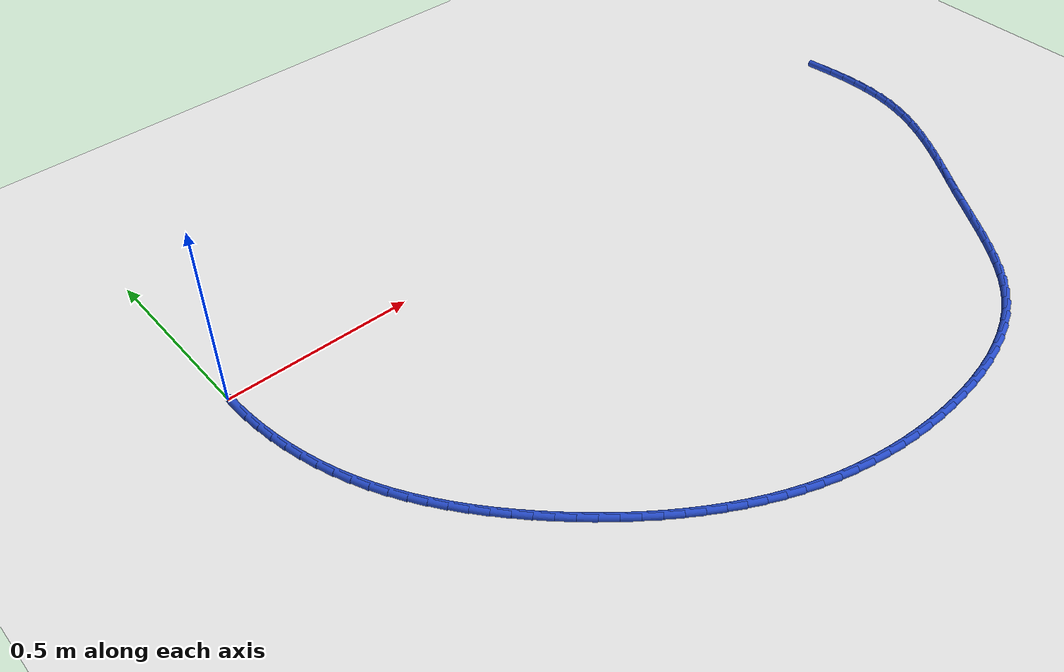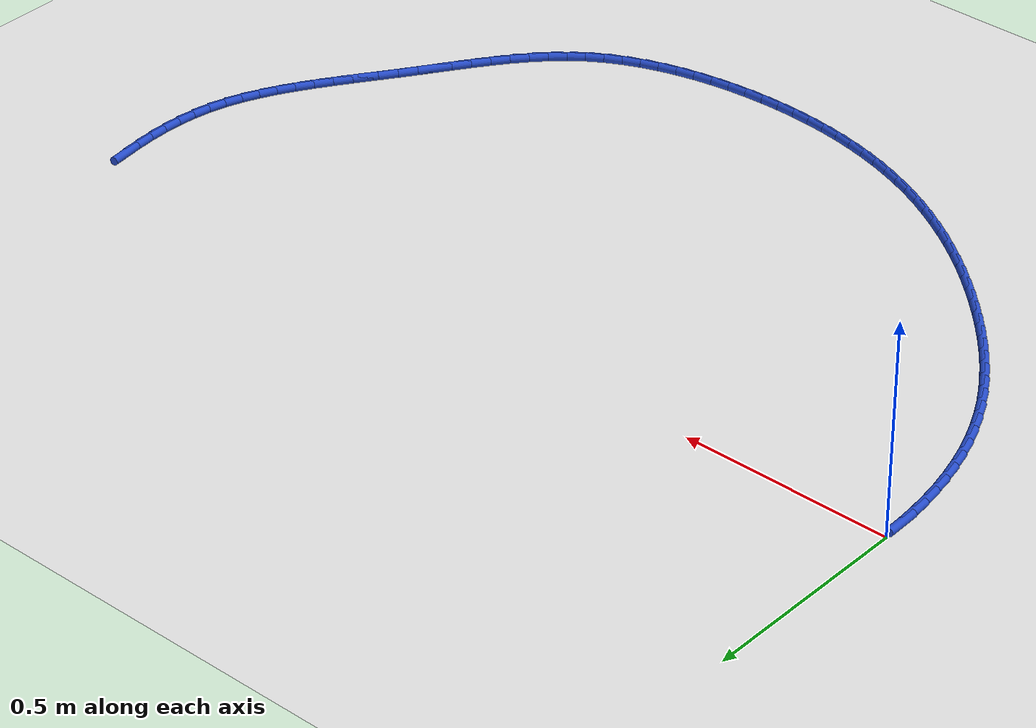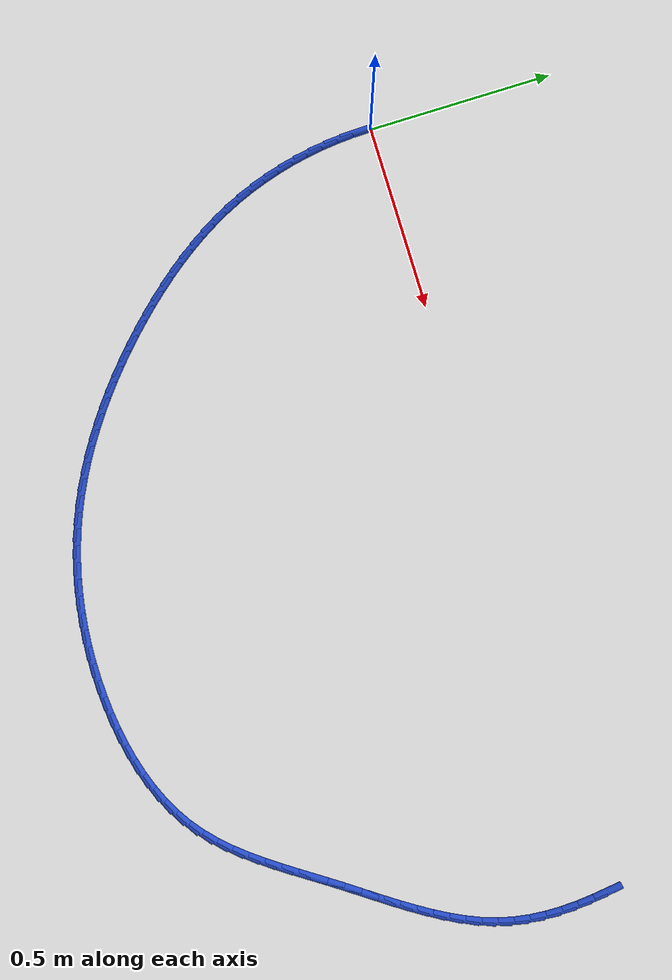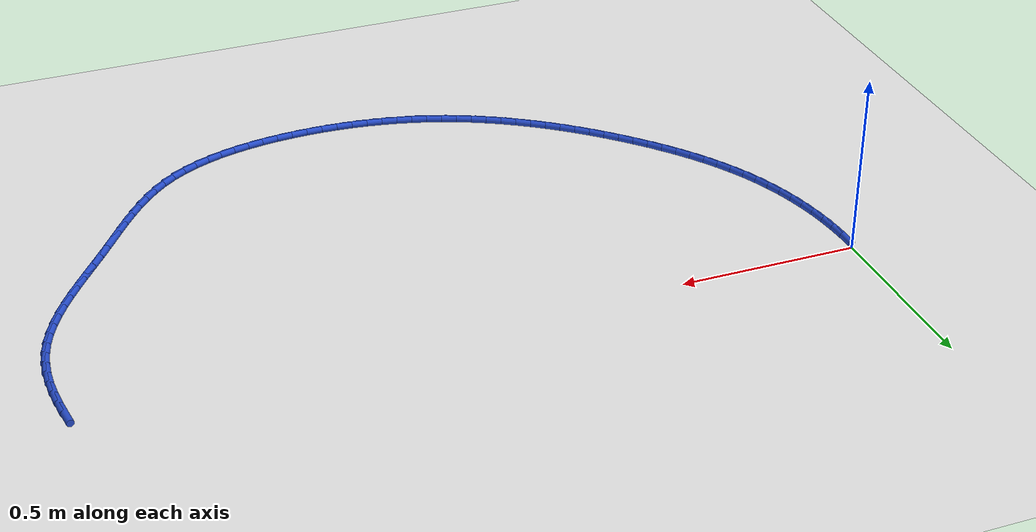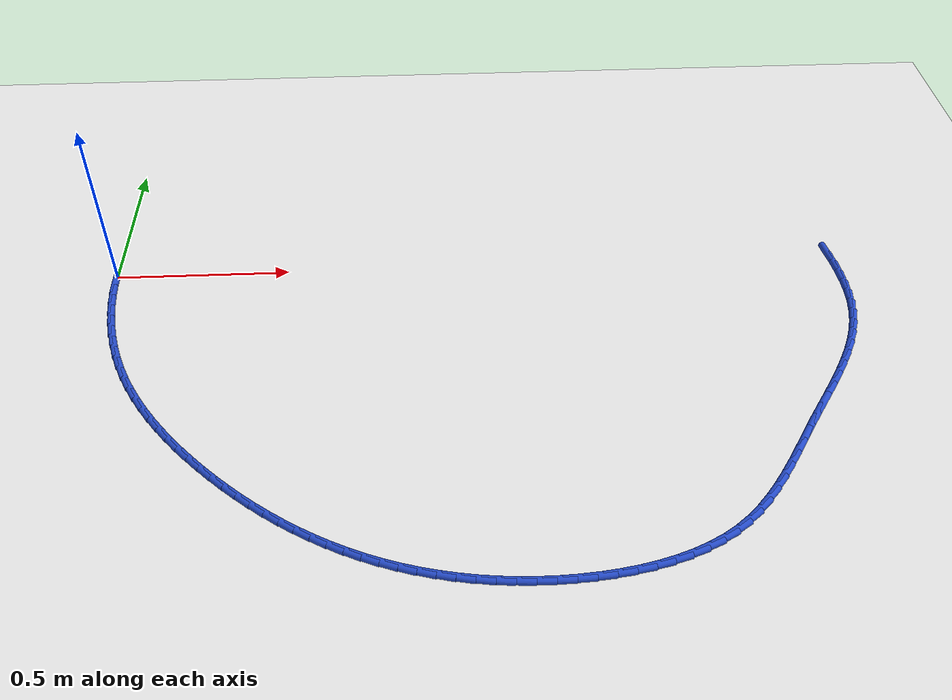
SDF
<sdf version="1.6">
 <world name="default">
  <model name="ground_plane">
   <static>1</static>
   <link name="link">
    <collision name="collision">
     <geometry><plane><normal>0 0 1</normal><size>100 100</size></plane></geometry>
     <surface><friction><ode><mu>100</mu><mu2>50</mu2></ode></friction></surface>
    </collision>
    <visual name="visual">
     <cast_shadows>0</cast_shadows>
     <geometry><plane><normal>0 0 1</normal><size>100 100</size></plane></geometry>
     <material>
      <script><uri>file://media/materials/scripts/gazebo.material</uri><name>Gazebo/WhiteGlow</name></script>
     </material>
    </visual>
   </link>
  </model>
  <model name="line">
   <link name="link_74">
    <pose>2.1113435386234594 -4.940039006224098e-05 0.01 0 1.57 -1.441654745440006</pose>
    <collision name="collision">
     <geometry><cylinder><radius>0.01</radius><length>0.08</length></cylinder></geometry>
    </collision>
    <visual name="visual">
     <material>
      <script><name>Gazebo/Blue</name><uri>file://media/materials/scripts/gazebo.material</uri></script>
     </material>
     <geometry><cylinder><radius>0.01</radius><length>0.08</length></cylinder></geometry>
    </visual>
   </link>
   <link name="link_75">
    <pose>2.117135748800451 -0.044651412414624905 0.01 0 1.57 -1.483321731270571</pose>
    <collision name="collision">
     <geometry><cylinder><radius>0.01</radius><length>0.08</length></cylinder></geometry>
    </collision>
    <visual name="visual">
     <material>
      <script><name>Gazebo/Blue</name><uri>file://media/materials/scripts/gazebo.material</uri></script>
     </material>
     <geometry><cylinder><radius>0.01</radius><length>0.08</length></cylinder></geometry>
    </visual>
   </link>
   <link name="link_76">
    <pose>2.1210060083816904 -0.08878288885551706 0.01 0 1.57 -1.5331348587512796</pose>
    <collision name="collision">
     <geometry><cylinder><radius>0.01</radius><length>0.08</length></cylinder></geometry>
    </collision>
    <visual name="visual">
     <material>
      <script><name>Gazebo/Blue</name><uri>file://media/materials/scripts/gazebo.material</uri></script>
     </material>
     <geometry><cylinder><radius>0.01</radius><length>0.08</length></cylinder></geometry>
    </visual>
   </link>
   <link name="link_77">
    <pose>2.122649231355051 -0.1323936687044467 0.01 0 1.57 1.5501463523527739</pose>
    <collision name="collision">
     <geometry><cylinder><radius>0.01</radius><length>0.08</length></cylinder></geometry>
    </collision>
    <visual name="visual">
     <material>
      <script><name>Gazebo/Blue</name><uri>file://media/materials/scripts/gazebo.material</uri></script>
     </material>
     <geometry><cylinder><radius>0.01</radius><length>0.08</length></cylinder></geometry>
    </visual>
   </link>
   <link name="link_78">
    <pose>2.1217603317084093 -0.1754335909531214 0.01 0 1.57 1.483180463637573</pose>
    <collision name="collision">
     <geometry><cylinder><radius>0.01</radius><length>0.08</length></cylinder></geometry>
    </collision>
    <visual name="visual">
     <material>
      <script><name>Gazebo/Blue</name><uri>file://media/materials/scripts/gazebo.material</uri></script>
     </material>
     <geometry><cylinder><radius>0.01</radius><length>0.08</length></cylinder></geometry>
    </visual>
   </link>
   <link name="link_79">
    <pose>2.1180342234296385 -0.21785249459325084 0.01 0 1.57 1.4077354511814084</pose>
    <collision name="collision">
     <geometry><cylinder><radius>0.01</radius><length>0.08</length></cylinder></geometry>
    </collision>
    <visual name="visual">
     <material>
      <script><name>Gazebo/Blue</name><uri>file://media/materials/scripts/gazebo.material</uri></script>
     </material>
     <geometry><cylinder><radius>0.01</radius><length>0.08</length></cylinder></geometry>
    </visual>
   </link>
   <link name="link_80">
    <pose>2.1111658205066135 -0.2596002186165419 0.01 0 1.57 1.3245697374175465</pose>
    <collision name="collision">
     <geometry><cylinder><radius>0.01</radius><length>0.08</length></cylinder></geometry>
    </collision>
    <visual name="visual">
     <material>
      <script><name>Gazebo/Blue</name><uri>file://media/materials/scripts/gazebo.material</uri></script>
     </material>
     <geometry><cylinder><radius>0.01</radius><length>0.08</length></cylinder></geometry>
    </visual>
   </link>
   <link name="link_81">
    <pose>2.1008545687960254 -0.3006275612726654 0.01 0 1.57 1.2413383697773763</pose>
    <collision name="collision">
     <geometry><cylinder><radius>0.01</radius><length>0.08</length></cylinder></geometry>
    </collision>
    <visual name="visual">
     <material>
      <script><name>Gazebo/Blue</name><uri>file://media/materials/scripts/gazebo.material</uri></script>
     </material>
     <geometry><cylinder><radius>0.01</radius><length>0.08</length></cylinder></geometry>
    </visual>
   </link>
   <link name="link_82">
    <pose>2.087070107203448 -0.34094251241229756 0.01 0 1.57 1.168965172644767</pose>
    <collision name="collision">
     <geometry><cylinder><radius>0.01</radius><length>0.08</length></cylinder></geometry>
    </collision>
    <visual name="visual">
     <material>
      <script><name>Gazebo/Blue</name><uri>file://media/materials/scripts/gazebo.material</uri></script>
     </material>
     <geometry><cylinder><radius>0.01</radius><length>0.08</length></cylinder></geometry>
    </visual>
   </link>
   <link name="link_83">
    <pose>2.070199888368588 -0.3806415002692515 0.01 0 1.57 1.1083911365597328</pose>
    <collision name="collision">
     <geometry><cylinder><radius>0.01</radius><length>0.08</length></cylinder></geometry>
    </collision>
    <visual name="visual">
     <material>
      <script><name>Gazebo/Blue</name><uri>file://media/materials/scripts/gazebo.material</uri></script>
     </material>
     <geometry><cylinder><radius>0.01</radius><length>0.08</length></cylinder></geometry>
    </visual>
   </link>
   <link name="link_84">
    <pose>2.0506671909624328 -0.41982853635195 0.01 0 1.57 1.0592171250427465</pose>
    <collision name="collision">
     <geometry><cylinder><radius>0.01</radius><length>0.08</length></cylinder></geometry>
    </collision>
    <visual name="visual">
     <material>
      <script><name>Gazebo/Blue</name><uri>file://media/materials/scripts/gazebo.material</uri></script>
     </material>
     <geometry><cylinder><radius>0.01</radius><length>0.08</length></cylinder></geometry>
    </visual>
   </link>
   <link name="link_85">
    <pose>2.0288952936559723 -0.4586076321688136 0.01 0 1.57 1.0208247940489334</pose>
    <collision name="collision">
     <geometry><cylinder><radius>0.01</radius><length>0.08</length></cylinder></geometry>
    </collision>
    <visual name="visual">
     <material>
      <script><name>Gazebo/Blue</name><uri>file://media/materials/scripts/gazebo.material</uri></script>
     </material>
     <geometry><cylinder><radius>0.01</radius><length>0.08</length></cylinder></geometry>
    </visual>
   </link>
   <link name="link_86">
    <pose>2.0053074751201936 -0.4970827992282649 0.01 0 1.57 0.9925582580937964</pose>
    <collision name="collision">
     <geometry><cylinder><radius>0.01</radius><length>0.08</length></cylinder></geometry>
    </collision>
    <visual name="visual">
     <material>
      <script><name>Gazebo/Blue</name><uri>file://media/materials/scripts/gazebo.material</uri></script>
     </material>
     <geometry><cylinder><radius>0.01</radius><length>0.08</length></cylinder></geometry>
    </visual>
   </link>
   <link name="link_87">
    <pose>1.9803270140260865 -0.5353580490387251 0.01 0 1.57 0.9738369358224979</pose>
    <collision name="collision">
     <geometry><cylinder><radius>0.01</radius><length>0.08</length></cylinder></geometry>
    </collision>
    <visual name="visual">
     <material>
      <script><name>Gazebo/Blue</name><uri>file://media/materials/scripts/gazebo.material</uri></script>
     </material>
     <geometry><cylinder><radius>0.01</radius><length>0.08</length></cylinder></geometry>
    </visual>
   </link>
   <link name="link_88">
    <pose>1.9543771890446393 -0.573537393108615 0.01 0 1.57 0.9642178031817733</pose>
    <collision name="collision">
     <geometry><cylinder><radius>0.01</radius><length>0.08</length></cylinder></geometry>
    </collision>
    <visual name="visual">
     <material>
      <script><name>Gazebo/Blue</name><uri>file://media/materials/scripts/gazebo.material</uri></script>
     </material>
     <geometry><cylinder><radius>0.01</radius><length>0.08</length></cylinder></geometry>
    </visual>
   </link>
   <link name="link_89">
    <pose>1.92788127884684 -0.6117248429463574 0.01 0 1.57 0.9634248427808662</pose>
    <collision name="collision">
     <geometry><cylinder><radius>0.01</radius><length>0.08</length></cylinder></geometry>
    </collision>
    <visual name="visual">
     <material>
      <script><name>Gazebo/Blue</name><uri>file://media/materials/scripts/gazebo.material</uri></script>
     </material>
     <geometry><cylinder><radius>0.01</radius><length>0.08</length></cylinder></geometry>
    </visual>
   </link>
   <link name="link_90">
    <pose>1.9012625621036778 -0.6500244100603734 0.01 0 1.57 0.9713073079931377</pose>
    <collision name="collision">
     <geometry><cylinder><radius>0.01</radius><length>0.08</length></cylinder></geometry>
    </collision>
    <visual name="visual">
     <material>
      <script><name>Gazebo/Blue</name><uri>file://media/materials/scripts/gazebo.material</uri></script>
     </material>
     <geometry><cylinder><radius>0.01</radius><length>0.08</length></cylinder></geometry>
    </visual>
   </link>
   <link name="link_91">
    <pose>1.8749422973057186 -0.6885388500080164 0.01 0 1.57 0.9817716032266591</pose>
    <collision name="collision">
     <geometry><cylinder><radius>0.01</radius><length>0.08</length></cylinder></geometry>
    </collision>
    <visual name="visual">
     <material>
      <script><name>Gazebo/Blue</name><uri>file://media/materials/scripts/gazebo.material</uri></script>
     </material>
     <geometry><cylinder><radius>0.01</radius><length>0.08</length></cylinder></geometry>
    </visual>
   </link>
   <link name="link_92">
    <pose>1.8490980909558532 -0.7272194393151213 0.01 0 1.57 0.9829027595713841</pose>
    <collision name="collision">
     <geometry><cylinder><radius>0.01</radius><length>0.08</length></cylinder></geometry>
    </collision>
    <visual name="visual">
     <material>
      <script><name>Gazebo/Blue</name><uri>file://media/materials/scripts/gazebo.material</uri></script>
     </material>
     <geometry><cylinder><radius>0.01</radius><length>0.08</length></cylinder></geometry>
    </visual>
   </link>
   <link name="link_93">
    <pose>1.8234347653757477 -0.7657235234356904 0.01 0 1.57 0.9731680264339136</pose>
    <collision name="collision">
     <geometry><cylinder><radius>0.01</radius><length>0.08</length></cylinder></geometry>
    </collision>
    <visual name="visual">
     <material>
      <script><name>Gazebo/Blue</name><uri>file://media/materials/scripts/gazebo.material</uri></script>
     </material>
     <geometry><cylinder><radius>0.01</radius><length>0.08</length></cylinder></geometry>
    </visual>
   </link>
   <link name="link_94">
    <pose>1.7976028821614398 -0.8036747137990409 0.01 0 1.57 0.9522362246229236</pose>
    <collision name="collision">
     <geometry><cylinder><radius>0.01</radius><length>0.08</length></cylinder></geometry>
    </collision>
    <visual name="visual">
     <material>
      <script><name>Gazebo/Blue</name><uri>file://media/materials/scripts/gazebo.material</uri></script>
     </material>
     <geometry><cylinder><radius>0.01</radius><length>0.08</length></cylinder></geometry>
    </visual>
   </link>
   <link name="link_95">
    <pose>1.7712530029089713 -0.8406966218344885 0.01 0 1.57 0.9196320542576092</pose>
    <collision name="collision">
     <geometry><cylinder><radius>0.01</radius><length>0.08</length></cylinder></geometry>
    </collision>
    <visual name="visual">
     <material>
      <script><name>Gazebo/Blue</name><uri>file://media/materials/scripts/gazebo.material</uri></script>
     </material>
     <geometry><cylinder><radius>0.01</radius><length>0.08</length></cylinder></geometry>
    </visual>
   </link>
   <link name="link_96">
    <pose>1.7440356892143816 -0.8764128589713487 0.01 0 1.57 0.8748044109689256</pose>
    <collision name="collision">
     <geometry><cylinder><radius>0.01</radius><length>0.08</length></cylinder></geometry>
    </collision>
    <visual name="visual">
     <material>
      <script><name>Gazebo/Blue</name><uri>file://media/materials/scripts/gazebo.material</uri></script>
     </material>
     <geometry><cylinder><radius>0.01</radius><length>0.08</length></cylinder></geometry>
    </visual>
   </link>
   <link name="link_97">
    <pose>1.7156015026737086 -0.9104470366389383 0.01 0 1.57 0.8172581772664129</pose>
    <collision name="collision">
     <geometry><cylinder><radius>0.01</radius><length>0.08</length></cylinder></geometry>
    </collision>
    <visual name="visual">
     <material>
      <script><name>Gazebo/Blue</name><uri>file://media/materials/scripts/gazebo.material</uri></script>
     </material>
     <geometry><cylinder><radius>0.01</radius><length>0.08</length></cylinder></geometry>
    </visual>
   </link>
   <link name="link_98">
    <pose>1.685601004882994 -0.9424227662665728 0.01 0 1.57 0.7467668075097762</pose>
    <collision name="collision">
     <geometry><cylinder><radius>0.01</radius><length>0.08</length></cylinder></geometry>
    </collision>
    <visual name="visual">
     <material>
      <script><name>Gazebo/Blue</name><uri>file://media/materials/scripts/gazebo.material</uri></script>
     </material>
     <geometry><cylinder><radius>0.01</radius><length>0.08</length></cylinder></geometry>
    </visual>
   </link>
   <link name="link_99">
    <pose>1.6536847574382754 -0.971963659283569 0.01 0 1.57 0.6636682333886756</pose>
    <collision name="collision">
     <geometry><cylinder><radius>0.01</radius><length>0.08</length></cylinder></geometry>
    </collision>
    <visual name="visual">
     <material>
      <script><name>Gazebo/Blue</name><uri>file://media/materials/scripts/gazebo.material</uri></script>
     </material>
     <geometry><cylinder><radius>0.01</radius><length>0.08</length></cylinder></geometry>
    </visual>
   </link>
   <link name="link_100">
    <pose>1.6195034464417957 -0.998693426487204 0.01 0 1.57 0.573223925472038</pose>
    <collision name="collision">
     <geometry><cylinder><radius>0.01</radius><length>0.08</length></cylinder></geometry>
    </collision>
    <visual name="visual">
     <material>
      <script><name>Gazebo/Blue</name><uri>file://media/materials/scripts/gazebo.material</uri></script>
     </material>
     <geometry><cylinder><radius>0.01</radius><length>0.08</length></cylinder></geometry>
    </visual>
   </link>
   <link name="link_101">
    <pose>1.5828533896978618 -1.0223520068234142 0.01 0 1.57 0.48842621864833813</pose>
    <collision name="collision">
     <geometry><cylinder><radius>0.01</radius><length>0.08</length></cylinder></geometry>
    </collision>
    <visual name="visual">
     <material>
      <script><name>Gazebo/Blue</name><uri>file://media/materials/scripts/gazebo.material</uri></script>
     </material>
     <geometry><cylinder><radius>0.01</radius><length>0.08</length></cylinder></geometry>
    </visual>
   </link>
   <link name="link_102">
    <pose>1.5439576857493478 -1.0430199514429266 0.01 0 1.57 0.4114280754309346</pose>
    <collision name="collision">
     <geometry><cylinder><radius>0.01</radius><length>0.08</length></cylinder></geometry>
    </collision>
    <visual name="visual">
     <material>
      <script><name>Gazebo/Blue</name><uri>file://media/materials/scripts/gazebo.material</uri></script>
     </material>
     <geometry><cylinder><radius>0.01</radius><length>0.08</length></cylinder></geometry>
    </visual>
   </link>
   <link name="link_103">
    <pose>1.5031172064269014 -1.0608398820836036 0.01 0 1.57 0.34180312833839616</pose>
    <collision name="collision">
     <geometry><cylinder><radius>0.01</radius><length>0.08</length></cylinder></geometry>
    </collision>
    <visual name="visual">
     <material>
      <script><name>Gazebo/Blue</name><uri>file://media/materials/scripts/gazebo.material</uri></script>
     </material>
     <geometry><cylinder><radius>0.01</radius><length>0.08</length></cylinder></geometry>
    </visual>
   </link>
   <link name="link_104">
    <pose>1.4606328235611703 -1.0759544204833065 0.01 0 1.57 0.2789249947846538</pose>
    <collision name="collision">
     <geometry><cylinder><radius>0.01</radius><length>0.08</length></cylinder></geometry>
    </collision>
    <visual name="visual">
     <material>
      <script><name>Gazebo/Blue</name><uri>file://media/materials/scripts/gazebo.material</uri></script>
     </material>
     <geometry><cylinder><radius>0.01</radius><length>0.08</length></cylinder></geometry>
    </visual>
   </link>
   <link name="link_105">
    <pose>1.4168054089828002 -1.0885061883798983 0.01 0 1.57 0.22207723109834193</pose>
    <collision name="collision">
     <geometry><cylinder><radius>0.01</radius><length>0.08</length></cylinder></geometry>
    </collision>
    <visual name="visual">
     <material>
      <script><name>Gazebo/Blue</name><uri>file://media/materials/scripts/gazebo.material</uri></script>
     </material>
     <geometry><cylinder><radius>0.01</radius><length>0.08</length></cylinder></geometry>
    </visual>
   </link>
   <link name="link_106">
    <pose>1.37193583452244 -1.0986378075112422 0.01 0 1.57 0.17052548710952986</pose>
    <collision name="collision">
     <geometry><cylinder><radius>0.01</radius><length>0.08</length></cylinder></geometry>
    </collision>
    <visual name="visual">
     <material>
      <script><name>Gazebo/Blue</name><uri>file://media/materials/scripts/gazebo.material</uri></script>
     </material>
     <geometry><cylinder><radius>0.01</radius><length>0.08</length></cylinder></geometry>
    </visual>
   </link>
   <link name="link_107">
    <pose>1.3263249720107353 -1.1064918996151998 0.01 0 1.57 0.12355905565295269</pose>
    <collision name="collision">
     <geometry><cylinder><radius>0.01</radius><length>0.08</length></cylinder></geometry>
    </collision>
    <visual name="visual">
     <material>
      <script><name>Gazebo/Blue</name><uri>file://media/materials/scripts/gazebo.material</uri></script>
     </material>
     <geometry><cylinder><radius>0.01</radius><length>0.08</length></cylinder></geometry>
    </visual>
   </link>
   <link name="link_108">
    <pose>1.280273693278333 -1.1122110864296335 0.01 0 1.57 0.08051052142703463</pose>
    <collision name="collision">
     <geometry><cylinder><radius>0.01</radius><length>0.08</length></cylinder></geometry>
    </collision>
    <visual name="visual">
     <material>
      <script><name>Gazebo/Blue</name><uri>file://media/materials/scripts/gazebo.material</uri></script>
     </material>
     <geometry><cylinder><radius>0.01</radius><length>0.08</length></cylinder></geometry>
    </visual>
   </link>
   <link name="link_109">
    <pose>1.2340828701558821 -1.1159379896924064 0.01 0 1.57 0.040430079752524835</pose>
    <collision name="collision">
     <geometry><cylinder><radius>0.01</radius><length>0.08</length></cylinder></geometry>
    </collision>
    <visual name="visual">
     <material>
      <script><name>Gazebo/Blue</name><uri>file://media/materials/scripts/gazebo.material</uri></script>
     </material>
     <geometry><cylinder><radius>0.01</radius><length>0.08</length></cylinder></geometry>
    </visual>
   </link>
   <link name="link_110">
    <pose>1.188028210400135 -1.1178009984559432 0.01 0 1.57 0.0007766001609319191</pose>
    <collision name="collision">
     <geometry><cylinder><radius>0.01</radius><length>0.08</length></cylinder></geometry>
    </collision>
    <visual name="visual">
     <material>
      <script><name>Gazebo/Blue</name><uri>file://media/materials/scripts/gazebo.material</uri></script>
     </material>
     <geometry><cylinder><radius>0.01</radius><length>0.08</length></cylinder></geometry>
    </visual>
   </link>
   <link name="link_111">
    <pose>1.1422228835313153 -1.1178365708873124 0.01 0 1.57 -0.03935652432028098</pose>
    <collision name="collision">
     <geometry><cylinder><radius>0.01</radius><length>0.08</length></cylinder></geometry>
    </collision>
    <visual name="visual">
     <material>
      <script><name>Gazebo/Blue</name><uri>file://media/materials/scripts/gazebo.material</uri></script>
     </material>
     <geometry><cylinder><radius>0.01</radius><length>0.08</length></cylinder></geometry>
    </visual>
   </link>
   <link name="link_112">
    <pose>1.0967154663787884 -1.1160446318221968 0.01 0 1.57 -0.07997808200745236</pose>
    <collision name="collision">
     <geometry><cylinder><radius>0.01</radius><length>0.08</length></cylinder></geometry>
    </collision>
    <visual name="visual">
     <material>
      <script><name>Gazebo/Blue</name><uri>file://media/materials/scripts/gazebo.material</uri></script>
     </material>
     <geometry><cylinder><radius>0.01</radius><length>0.08</length></cylinder></geometry>
    </visual>
   </link>
   <link name="link_113">
    <pose>1.0515543714423297 -1.1124250131522138 0.01 0 1.57 -0.12109125525243128</pose>
    <collision name="collision">
     <geometry><cylinder><radius>0.01</radius><length>0.08</length></cylinder></geometry>
    </collision>
    <visual name="visual">
     <material>
      <script><name>Gazebo/Blue</name><uri>file://media/materials/scripts/gazebo.material</uri></script>
     </material>
     <geometry><cylinder><radius>0.01</radius><length>0.08</length></cylinder></geometry>
    </visual>
   </link>
   <link name="link_114">
    <pose>1.0067880112217171 -1.1069775467689802 0.01 0 1.57 -0.16269522859568447</pose>
    <collision name="collision">
     <geometry><cylinder><radius>0.01</radius><length>0.08</length></cylinder></geometry>
    </collision>
    <visual name="visual">
     <material>
      <script><name>Gazebo/Blue</name><uri>file://media/materials/scripts/gazebo.material</uri></script>
     </material>
     <geometry><cylinder><radius>0.01</radius><length>0.08</length></cylinder></geometry>
    </visual>
   </link>
   <link name="link_115">
    <pose>0.962464798216727 -1.099702064564114 0.01 0 1.57 -0.20478464426223858</pose>
    <collision name="collision">
     <geometry><cylinder><radius>0.01</radius><length>0.08</length></cylinder></geometry>
    </collision>
    <visual name="visual">
     <material>
      <script><name>Gazebo/Blue</name><uri>file://media/materials/scripts/gazebo.material</uri></script>
     </material>
     <geometry><cylinder><radius>0.01</radius><length>0.08</length></cylinder></geometry>
    </visual>
   </link>
   <link name="link_116">
    <pose>0.918633144927137 -1.0905983984292325 0.01 0 1.57 -0.2473490801949317</pose>
    <collision name="collision">
     <geometry><cylinder><radius>0.01</radius><length>0.08</length></cylinder></geometry>
    </collision>
    <visual name="visual">
     <material>
      <script><name>Gazebo/Blue</name><uri>file://media/materials/scripts/gazebo.material</uri></script>
     </material>
     <geometry><cylinder><radius>0.01</radius><length>0.08</length></cylinder></geometry>
    </visual>
   </link>
   <link name="link_117">
    <pose>0.8753414638527249 -1.0796663802559527 0.01 0 1.57 -0.2903725695183887</pose>
    <collision name="collision">
     <geometry><cylinder><radius>0.01</radius><length>0.08</length></cylinder></geometry>
    </collision>
    <visual name="visual">
     <material>
      <script><name>Gazebo/Blue</name><uri>file://media/materials/scripts/gazebo.material</uri></script>
     </material>
     <geometry><cylinder><radius>0.01</radius><length>0.08</length></cylinder></geometry>
    </visual>
   </link>
   <link name="link_118">
    <pose>0.8326381674932661 -1.0669058419358919 0.01 0 1.57 -0.33383318251225075</pose>
    <collision name="collision">
     <geometry><cylinder><radius>0.01</radius><length>0.08</length></cylinder></geometry>
    </collision>
    <visual name="visual">
     <material>
      <script><name>Gazebo/Blue</name><uri>file://media/materials/scripts/gazebo.material</uri></script>
     </material>
     <geometry><cylinder><radius>0.01</radius><length>0.08</length></cylinder></geometry>
    </visual>
   </link>
   <link name="link_119">
    <pose>0.7905716683485398 -1.0523166153606682 0.01 0 1.57 -0.37767677805625227</pose>
    <collision name="collision">
     <geometry><cylinder><radius>0.01</radius><length>0.08</length></cylinder></geometry>
    </collision>
    <visual name="visual">
     <material>
      <script><name>Gazebo/Blue</name><uri>file://media/materials/scripts/gazebo.material</uri></script>
     </material>
     <geometry><cylinder><radius>0.01</radius><length>0.08</length></cylinder></geometry>
    </visual>
   </link>
   <link name="link_120">
    <pose>0.7491899281795313 -1.0358995948224166 0.01 0 1.57 -0.4209651252816041</pose>
    <collision name="collision">
     <geometry><cylinder><radius>0.01</radius><length>0.08</length></cylinder></geometry>
    </collision>
    <visual name="visual">
     <material>
      <script><name>Gazebo/Blue</name><uri>file://media/materials/scripts/gazebo.material</uri></script>
     </material>
     <geometry><cylinder><radius>0.01</radius><length>0.08</length></cylinder></geometry>
    </visual>
   </link>
   <link name="link_121">
    <pose>0.708525182361848 -1.0176927420243 0.01 0 1.57 -0.46255333793030956</pose>
    <collision name="collision">
     <geometry><cylinder><radius>0.01</radius><length>0.08</length></cylinder></geometry>
    </collision>
    <visual name="visual">
     <material>
      <script><name>Gazebo/Blue</name><uri>file://media/materials/scripts/gazebo.material</uri></script>
     </material>
     <geometry><cylinder><radius>0.01</radius><length>0.08</length></cylinder></geometry>
    </visual>
   </link>
   <link name="link_122">
    <pose>0.6685902194187082 -0.9977798552971091 0.01 0 1.57 -0.5023690969982254</pose>
    <collision name="collision">
     <geometry><cylinder><radius>0.01</radius><length>0.08</length></cylinder></geometry>
    </collision>
    <visual name="visual">
     <material>
      <script><name>Gazebo/Blue</name><uri>file://media/materials/scripts/gazebo.material</uri></script>
     </material>
     <geometry><cylinder><radius>0.01</radius><length>0.08</length></cylinder></geometry>
    </visual>
   </link>
   <link name="link_123">
    <pose>0.6293966225076735 -0.9762475740430647 0.01 0 1.57 -0.5404318902849601</pose>
    <collision name="collision">
     <geometry><cylinder><radius>0.01</radius><length>0.08</length></cylinder></geometry>
    </collision>
    <visual name="visual">
     <material>
      <script><name>Gazebo/Blue</name><uri>file://media/materials/scripts/gazebo.material</uri></script>
     </material>
     <geometry><cylinder><radius>0.01</radius><length>0.08</length></cylinder></geometry>
    </visual>
   </link>
   <link name="link_124">
    <pose>0.5909559747863059 -0.9531825376643869 0.01 0 1.57 -0.5767795811238484</pose>
    <collision name="collision">
     <geometry><cylinder><radius>0.01</radius><length>0.08</length></cylinder></geometry>
    </collision>
    <visual name="visual">
     <material>
      <script><name>Gazebo/Blue</name><uri>file://media/materials/scripts/gazebo.material</uri></script>
     </material>
     <geometry><cylinder><radius>0.01</radius><length>0.08</length></cylinder></geometry>
    </visual>
   </link>
   <link name="link_125">
    <pose>0.553279859412169 -0.9286713855632971 0.01 0 1.57 -0.6114645377236594</pose>
    <collision name="collision">
     <geometry><cylinder><radius>0.01</radius><length>0.08</length></cylinder></geometry>
    </collision>
    <visual name="visual">
     <material>
      <script><name>Gazebo/Blue</name><uri>file://media/materials/scripts/gazebo.material</uri></script>
     </material>
     <geometry><cylinder><radius>0.01</radius><length>0.08</length></cylinder></geometry>
    </visual>
   </link>
   <link name="link_126">
    <pose>0.5163798595428233 -0.9028007571420147 0.01 0 1.57 -0.6445501528336908</pose>
    <collision name="collision">
     <geometry><cylinder><radius>0.01</radius><length>0.08</length></cylinder></geometry>
    </collision>
    <visual name="visual">
     <material>
      <script><name>Gazebo/Blue</name><uri>file://media/materials/scripts/gazebo.material</uri></script>
     </material>
     <geometry><cylinder><radius>0.01</radius><length>0.08</length></cylinder></geometry>
    </visual>
   </link>
   <link name="link_127">
    <pose>0.48026755833583257 -0.8756572918027616 0.01 0 1.57 -0.676107822851388</pose>
    <collision name="collision">
     <geometry><cylinder><radius>0.01</radius><length>0.08</length></cylinder></geometry>
    </collision>
    <visual name="visual">
     <material>
      <script><name>Gazebo/Blue</name><uri>file://media/materials/scripts/gazebo.material</uri></script>
     </material>
     <geometry><cylinder><radius>0.01</radius><length>0.08</length></cylinder></geometry>
    </visual>
   </link>
   <link name="link_128">
    <pose>0.44495453894875775 -0.8473276289477573 0.01 0 1.57 -0.7062144068792773</pose>
    <collision name="collision">
     <geometry><cylinder><radius>0.01</radius><length>0.08</length></cylinder></geometry>
    </collision>
    <visual name="visual">
     <material>
      <script><name>Gazebo/Blue</name><uri>file://media/materials/scripts/gazebo.material</uri></script>
     </material>
     <geometry><cylinder><radius>0.01</radius><length>0.08</length></cylinder></geometry>
    </visual>
   </link>
   <link name="link_129">
    <pose>0.4104523845391617 -0.8178984079792228 0.01 0 1.57 -0.73495015238289</pose>
    <collision name="collision">
     <geometry><cylinder><radius>0.01</radius><length>0.08</length></cylinder></geometry>
    </collision>
    <visual name="visual">
     <material>
      <script><name>Gazebo/Blue</name><uri>file://media/materials/scripts/gazebo.material</uri></script>
     </material>
     <geometry><cylinder><radius>0.01</radius><length>0.08</length></cylinder></geometry>
    </visual>
   </link>
   <link name="link_130">
    <pose>0.3767726782646072 -0.787456268299379 0.01 0 1.57 -0.7623970529267162</pose>
    <collision name="collision">
     <geometry><cylinder><radius>0.01</radius><length>0.08</length></cylinder></geometry>
    </collision>
    <visual name="visual">
     <material>
      <script><name>Gazebo/Blue</name><uri>file://media/materials/scripts/gazebo.material</uri></script>
     </material>
     <geometry><cylinder><radius>0.01</radius><length>0.08</length></cylinder></geometry>
    </visual>
   </link>
   <link name="link_131">
    <pose>0.3439270032826553 -0.7560878493104458 0.01 0 1.57 -0.7887602287148057</pose>
    <collision name="collision">
     <geometry><cylinder><radius>0.01</radius><length>0.08</length></cylinder></geometry>
    </collision>
    <visual name="visual">
     <material>
      <script><name>Gazebo/Blue</name><uri>file://media/materials/scripts/gazebo.material</uri></script>
     </material>
     <geometry><cylinder><radius>0.01</radius><length>0.08</length></cylinder></geometry>
    </visual>
   </link>
   <link name="link_132">
    <pose>0.3119310243763859 -0.723875998674 0.01 0 1.57 -0.8159963826727062</pose>
    <collision name="collision">
     <geometry><cylinder><radius>0.01</radius><length>0.08</length></cylinder></geometry>
    </collision>
    <visual name="visual">
     <material>
      <script><name>Gazebo/Blue</name><uri>file://media/materials/scripts/gazebo.material</uri></script>
     </material>
     <geometry><cylinder><radius>0.01</radius><length>0.08</length></cylinder></geometry>
    </visual>
   </link>
   <link name="link_133">
    <pose>0.28086266712210084 -0.6908457251393292 0.01 0 1.57 -0.8456621789987205</pose>
    <collision name="collision">
     <geometry><cylinder><radius>0.01</radius><length>0.08</length></cylinder></geometry>
    </collision>
    <visual name="visual">
     <material>
      <script><name>Gazebo/Blue</name><uri>file://media/materials/scripts/gazebo.material</uri></script>
     </material>
     <geometry><cylinder><radius>0.01</radius><length>0.08</length></cylinder></geometry>
    </visual>
   </link>
   <link name="link_134">
    <pose>0.2508484003197523 -0.6569769418649132 0.01 0 1.57 -0.8778971069398124</pose>
    <collision name="collision">
     <geometry><cylinder><radius>0.01</radius><length>0.08</length></cylinder></geometry>
    </collision>
    <visual name="visual">
     <material>
      <script><name>Gazebo/Blue</name><uri>file://media/materials/scripts/gazebo.material</uri></script>
     </material>
     <geometry><cylinder><radius>0.01</radius><length>0.08</length></cylinder></geometry>
    </visual>
   </link>
   <link name="link_135">
    <pose>0.22201597750057014 -0.6222483685220325 0.01 0 1.57 -0.9127972660046155</pose>
    <collision name="collision">
     <geometry><cylinder><radius>0.01</radius><length>0.08</length></cylinder></geometry>
    </collision>
    <visual name="visual">
     <material>
      <script><name>Gazebo/Blue</name><uri>file://media/materials/scripts/gazebo.material</uri></script>
     </material>
     <geometry><cylinder><radius>0.01</radius><length>0.08</length></cylinder></geometry>
    </visual>
   </link>
   <link name="link_136">
    <pose>0.19449315219578267 -0.5866387247819663 0.01 0 1.57 -0.9504474979147884</pose>
    <collision name="collision">
     <geometry><cylinder><radius>0.01</radius><length>0.08</length></cylinder></geometry>
    </collision>
    <visual name="visual">
     <material>
      <script><name>Gazebo/Blue</name><uri>file://media/materials/scripts/gazebo.material</uri></script>
     </material>
     <geometry><cylinder><radius>0.01</radius><length>0.08</length></cylinder></geometry>
    </visual>
   </link>
   <link name="link_137">
    <pose>0.16840767793661973 -0.5501267303159958 0.01 0 1.57 -0.9909135407818631</pose>
    <collision name="collision">
     <geometry><cylinder><radius>0.01</radius><length>0.08</length></cylinder></geometry>
    </collision>
    <visual name="visual">
     <material>
      <script><name>Gazebo/Blue</name><uri>file://media/materials/scripts/gazebo.material</uri></script>
     </material>
     <geometry><cylinder><radius>0.01</radius><length>0.08</length></cylinder></geometry>
    </visual>
   </link>
   <link name="link_138">
    <pose>0.14388730825431112 -0.5126911047954017 0.01 0 1.57 -1.0342328359677309</pose>
    <collision name="collision">
     <geometry><cylinder><radius>0.01</radius><length>0.08</length></cylinder></geometry>
    </collision>
    <visual name="visual">
     <material>
      <script><name>Gazebo/Blue</name><uri>file://media/materials/scripts/gazebo.material</uri></script>
     </material>
     <geometry><cylinder><radius>0.01</radius><length>0.08</length></cylinder></geometry>
    </visual>
   </link>
   <link name="link_139">
    <pose>0.12105979668008522 -0.474310567891463 0.01 0 1.57 -1.0804042265084568</pose>
    <collision name="collision">
     <geometry><cylinder><radius>0.01</radius><length>0.08</length></cylinder></geometry>
    </collision>
    <visual name="visual">
     <material>
      <script><name>Gazebo/Blue</name><uri>file://media/materials/scripts/gazebo.material</uri></script>
     </material>
     <geometry><cylinder><radius>0.01</radius><length>0.08</length></cylinder></geometry>
    </visual>
   </link>
   <link name="link_140">
    <pose>0.10005289674517215 -0.43496383927546145 0.01 0 1.57 -1.129359839501472</pose>
    <collision name="collision">
     <geometry><cylinder><radius>0.01</radius><length>0.08</length></cylinder></geometry>
    </collision>
    <visual name="visual">
     <material>
      <script><name>Gazebo/Blue</name><uri>file://media/materials/scripts/gazebo.material</uri></script>
     </material>
     <geometry><cylinder><radius>0.01</radius><length>0.08</length></cylinder></geometry>
    </visual>
   </link>
   <link name="link_141">
    <pose>0.0809937645095392 -0.39463017387337535 0.01 0 1.57 -1.1796544693404005</pose>
    <collision name="collision">
     <geometry><cylinder><radius>0.01</radius><length>0.08</length></cylinder></geometry>
    </collision>
    <visual name="visual">
     <material>
      <script><name>Gazebo/Blue</name><uri>file://media/materials/scripts/gazebo.material</uri></script>
     </material>
     <geometry><cylinder><radius>0.01</radius><length>0.08</length></cylinder></geometry>
    </visual>
   </link>
   <link name="link_142">
    <pose>0.06396241029609293 -0.3533310629143251 0.01 0 1.57 -1.2289730433370165</pose>
    <collision name="collision">
     <geometry><cylinder><radius>0.01</radius><length>0.08</length></cylinder></geometry>
    </collision>
    <visual name="visual">
     <material>
      <script><name>Gazebo/Blue</name><uri>file://media/materials/scripts/gazebo.material</uri></script>
     </material>
     <geometry><cylinder><radius>0.01</radius><length>0.08</length></cylinder></geometry>
    </visual>
   </link>
   <link name="link_143">
    <pose>0.04895840484852834 -0.31116006078019526 0.01 0 1.57 -1.277156379135518</pose>
    <collision name="collision">
     <geometry><cylinder><radius>0.01</radius><length>0.08</length></cylinder></geometry>
    </collision>
    <visual name="visual">
     <material>
      <script><name>Gazebo/Blue</name><uri>file://media/materials/scripts/gazebo.material</uri></script>
     </material>
     <geometry><cylinder><radius>0.01</radius><length>0.08</length></cylinder></geometry>
    </visual>
   </link>
   <link name="link_144">
    <pose>0.03597346087922288 -0.26821776160266253 0.01 0 1.57 -1.3242877998324378</pose>
    <collision name="collision">
     <geometry><cylinder><radius>0.01</radius><length>0.08</length></cylinder></geometry>
    </collision>
    <visual name="visual">
     <material>
      <script><name>Gazebo/Blue</name><uri>file://media/materials/scripts/gazebo.material</uri></script>
     </material>
     <geometry><cylinder><radius>0.01</radius><length>0.08</length></cylinder></geometry>
    </visual>
   </link>
   <link name="link_145">
    <pose>0.024999291100554856 -0.22460475951340658 0.01 0 1.57 -1.3704632329840196</pose>
    <collision name="collision">
     <geometry><cylinder><radius>0.01</radius><length>0.08</length></cylinder></geometry>
    </collision>
    <visual name="visual">
     <material>
      <script><name>Gazebo/Blue</name><uri>file://media/materials/scripts/gazebo.material</uri></script>
     </material>
     <geometry><cylinder><radius>0.01</radius><length>0.08</length></cylinder></geometry>
    </visual>
   </link>
   <link name="link_146">
    <pose>0.01602760822490183 -0.18042164864410407 0.01 0 1.57 -1.4157884241531014</pose>
    <collision name="collision">
     <geometry><cylinder><radius>0.01</radius><length>0.08</length></cylinder></geometry>
    </collision>
    <visual name="visual">
     <material>
      <script><name>Gazebo/Blue</name><uri>file://media/materials/scripts/gazebo.material</uri></script>
     </material>
     <geometry><cylinder><radius>0.01</radius><length>0.08</length></cylinder></geometry>
    </visual>
   </link>
   <link name="link_147">
    <pose>0.009050124964641918 -0.13576902312643385 0.01 0 1.57 -1.4603765777979387</pose>
    <collision name="collision">
     <geometry><cylinder><radius>0.01</radius><length>0.08</length></cylinder></geometry>
    </collision>
    <visual name="visual">
     <material>
      <script><name>Gazebo/Blue</name><uri>file://media/materials/scripts/gazebo.material</uri></script>
     </material>
     <geometry><cylinder><radius>0.01</radius><length>0.08</length></cylinder></geometry>
    </visual>
   </link>
   <link name="link_148">
    <pose>0.00405855403215309 -0.09074747709207476 0.01 0 1.57 -1.5043464052865054</pose>
    <collision name="collision">
     <geometry><cylinder><radius>0.01</radius><length>0.08</length></cylinder></geometry>
    </collision>
    <visual name="visual">
     <material>
      <script><name>Gazebo/Blue</name><uri>file://media/materials/scripts/gazebo.material</uri></script>
     </material>
     <geometry><cylinder><radius>0.01</radius><length>0.08</length></cylinder></geometry>
    </visual>
   </link>
   <link name="link_149">
    <pose>0.0010446081398130906 -0.0454576046727035 0.01 0 1.57 -1.5478205380523073</pose>
    <collision name="collision">
     <geometry><cylinder><radius>0.01</radius><length>0.08</length></cylinder></geometry>
    </collision>
    <visual name="visual">
     <material>
      <script><name>Gazebo/Blue</name><uri>file://media/materials/scripts/gazebo.material</uri></script>
     </material>
     <geometry><cylinder><radius>0.01</radius><length>0.08</length></cylinder></geometry>
    </visual>
   </link>
  </model>
 </world>
</sdf>
